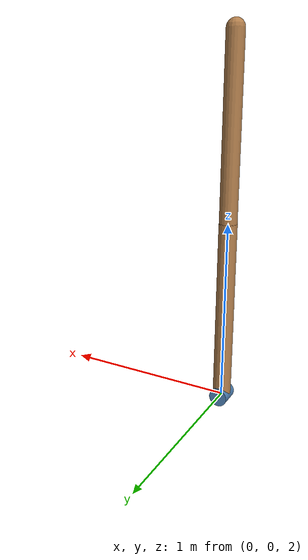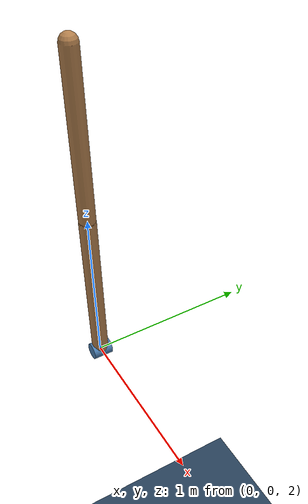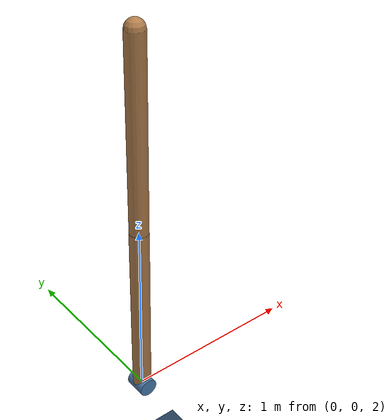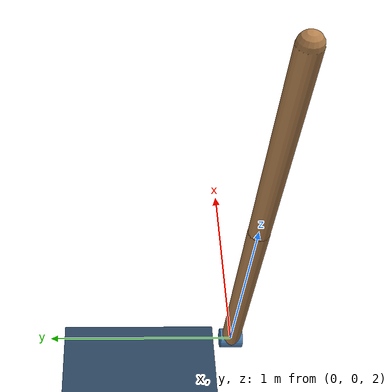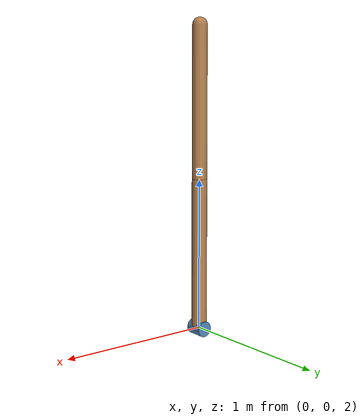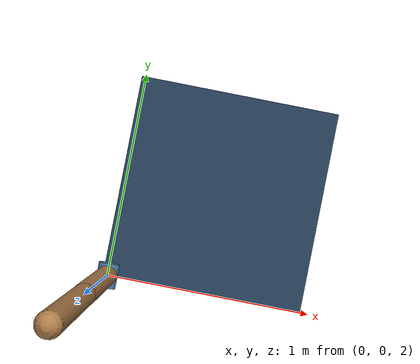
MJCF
<mujoco model="acrobot">
  <include file="./common/visual.xml"/>
  <include file="./common/skybox.xml"/>
  <include file="./common/materials.xml"/>

  <default>
    <joint damping=".05"/>
    <geom type="capsule" mass="1"/>
  </default>

  <option timestep="0.01" integrator="RK4">
    <flag constraint="disable" energy="enable"/>
  </option>

  <worldbody>
    <light name="light" pos="0 0 6"/>
    <geom name="floor" size="3 3 .2" type="plane" material="grid"/>
    <site name="target" type="sphere" pos="0 0 4" size="0.2" material="target" group="3"/>
    <camera name="fixed" pos="0 -6 2" zaxis="0 -1 0"/>
    <camera name="lookat" mode="targetbodycom" target="upper_arm" pos="0 -2 3" zaxis="0 -1 0"/>
    <body name="upper_arm" pos="0 0 2">
      <joint name="shoulder" type="hinge" axis="0 1 0"/>
      <geom name="upper_arm_decoration" material="decoration" type="cylinder" fromto="0 -.06 0 0 .06 0" size="0.051" mass="0"/>
      <geom name="upper_arm" fromto="0 0 0 0 0 1" size="0.05" material="self"/>
      <body name="lower_arm" pos="0 0 1">
        <joint name="elbow" type="hinge" axis="0 1 0"/>
        <geom name="lower_arm" fromto="0 0 0 0 0 1" size="0.049" material="self"/>
        <site name="tip" pos="0 0 1" size="0.01"/>
      </body>
    </body>
  </worldbody>

   <actuator>
    <motor name="elbow" joint="elbow" gear="2" ctrllimited="true" ctrlrange="-1 1"/>
  </actuator>
</mujoco>

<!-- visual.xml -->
<mujoco>
  <visual>
    <headlight ambient=".4 .4 .4" diffuse=".8 .8 .8" specular="0.1 0.1 0.1"/>
    <map znear=".01"/>
    <quality shadowsize="2048"/>
  </visual>
</mujoco>

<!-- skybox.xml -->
<mujoco>
  <asset>
      <texture name="skybox" type="skybox" builtin="gradient" rgb1=".4 .6 .8" rgb2="0 0 0"
               width="800" height="800" mark="random" markrgb="1 1 1"/>
  </asset>
</mujoco>

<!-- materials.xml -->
<!--
Common textures, colors and materials to be used throughout this suite. Some
materials such as xxx_highlight are activated on occurence of certain events,
for example receiving a positive reward.
-->
<mujoco>
  <asset>
    <texture name="grid" type="2d" builtin="checker" rgb1=".1 .2 .3" rgb2=".2 .3 .4" width="300" height="300" mark="edge" markrgb=".2 .3 .4"/>
    <material name="grid" texture="grid" texrepeat="1 1" texuniform="true" reflectance=".2"/>
    <material name="self" rgba=".7 .5 .3 1"/>
    <material name="self_default" rgba=".7 .5 .3 1"/>
    <material name="self_highlight" rgba="0 .5 .3 1"/>
    <material name="effector" rgba=".7 .4 .2 1"/>
    <material name="effector_default" rgba=".7 .4 .2 1"/>
    <material name="effector_highlight" rgba="0 .5 .3 1"/>
    <material name="decoration" rgba=".3 .5 .7 1"/>
    <material name="eye" rgba="0 .2 1 1"/>
    <material name="target" rgba=".6 .3 .3 1"/>
    <material name="target_default" rgba=".6 .3 .3 1"/>
    <material name="target_highlight" rgba=".6 .3 .3 .4"/>
  </asset>
</mujoco>
